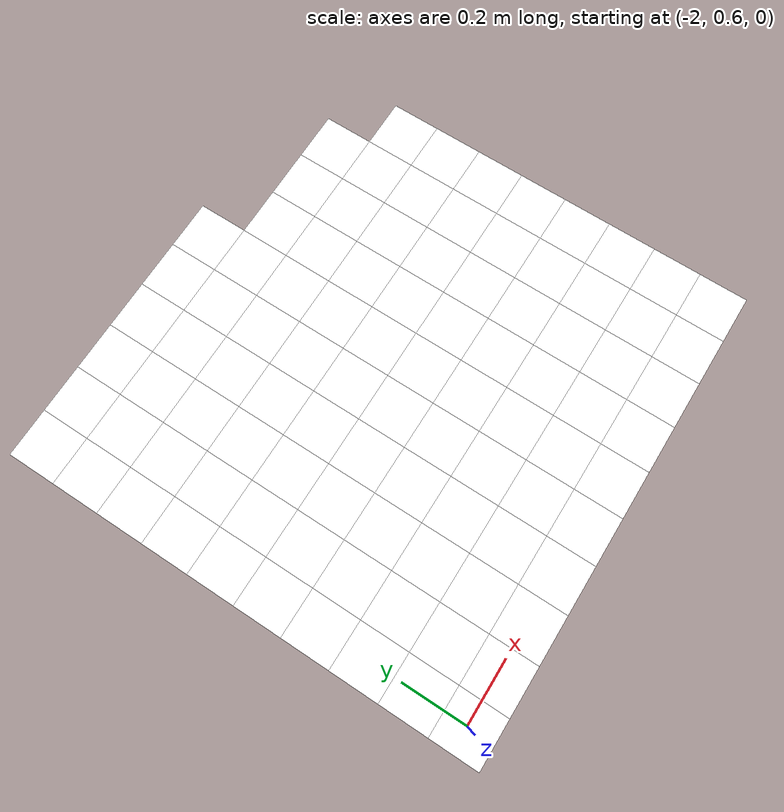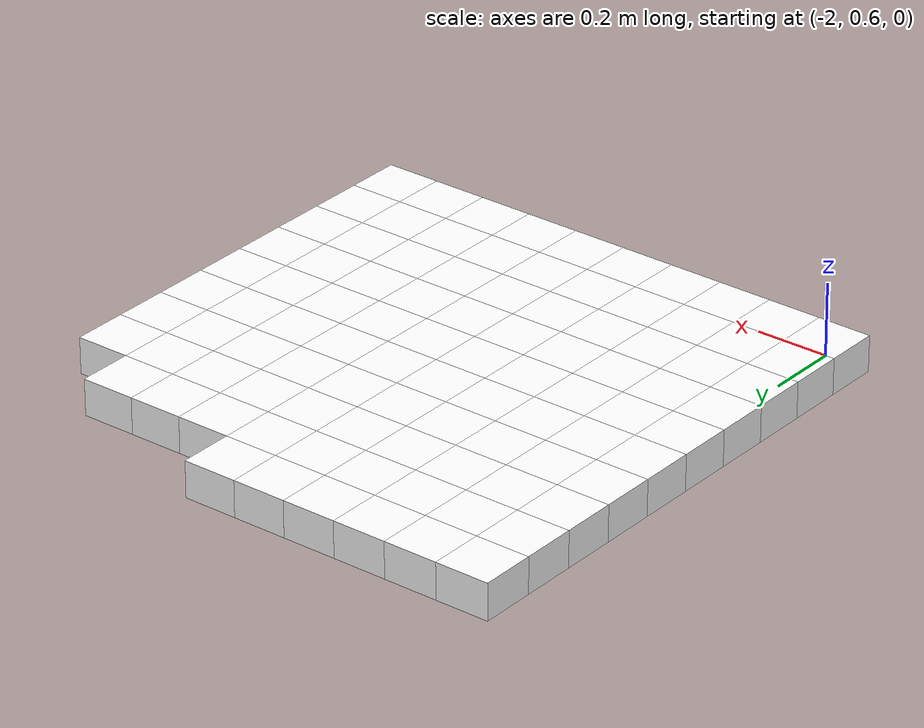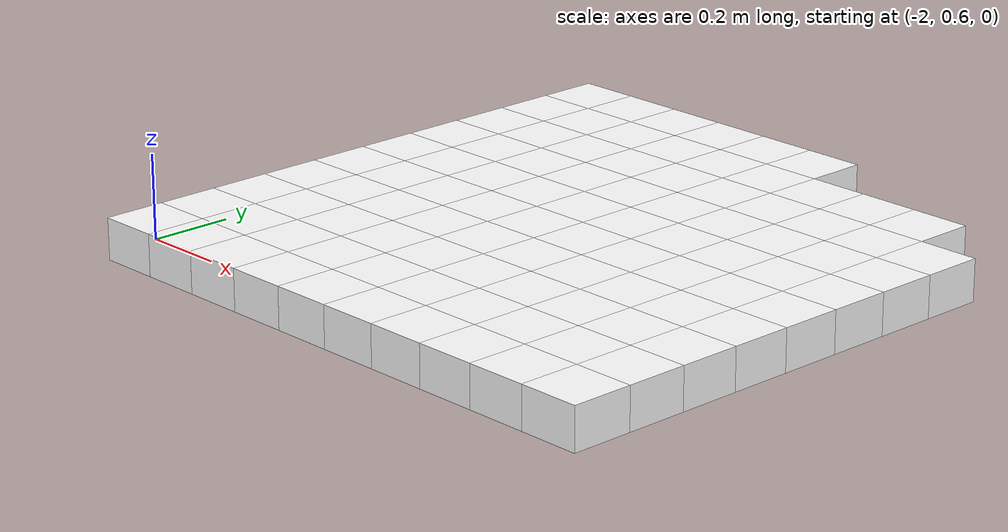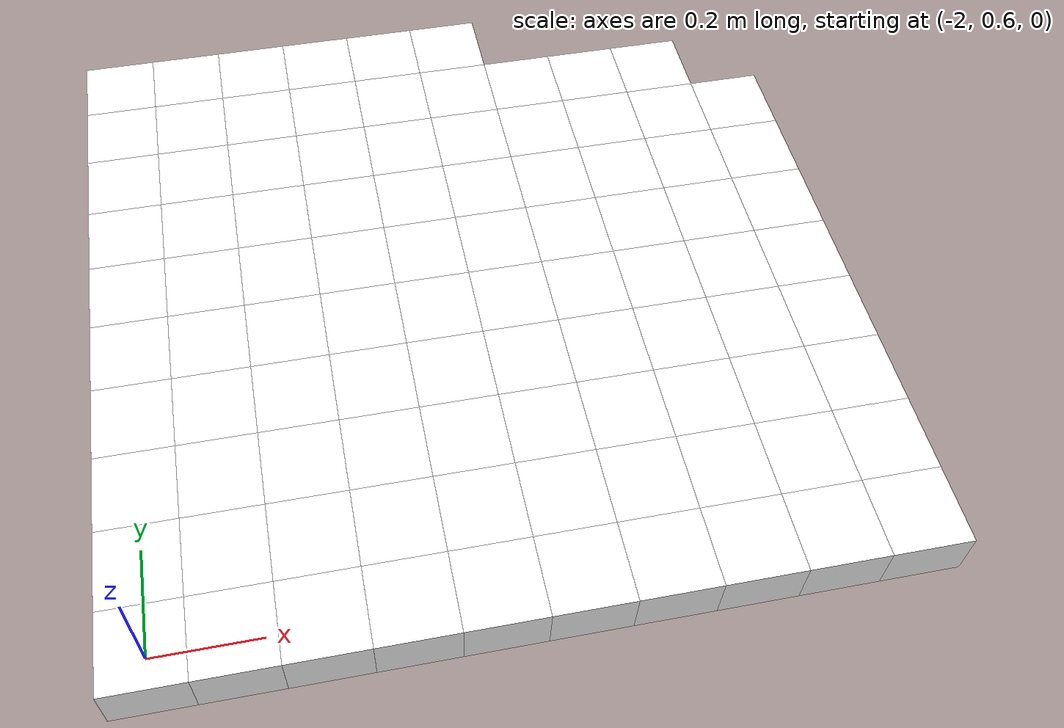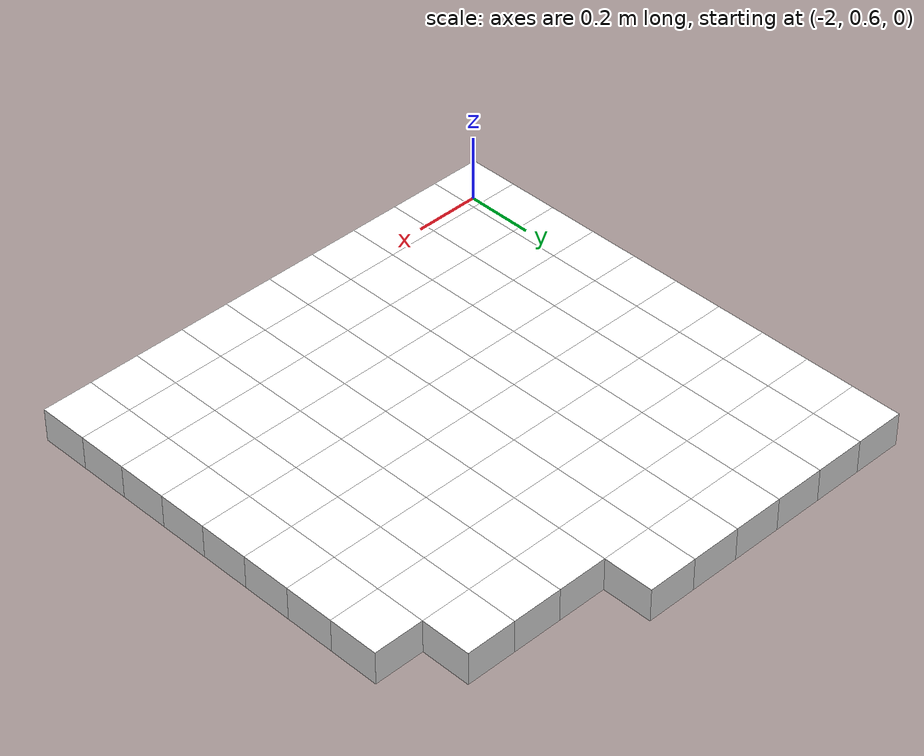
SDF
<sdf version="1.7">
 <world name="default">
  <include><uri>model://sun</uri></include>
  <model name="static_environment">
   <static>true</static>
   <link name="region_0">
    <pose>-2.0 0.6 0.0 0.0 0.0 0.0</pose>
    <collision name="region_0_collision">
     <geometry><box><size>0.15 0.15 0.1</size></box></geometry>
     <surface><friction><ode><mu>1.0</mu><mu2>1.0</mu2></ode></friction></surface>
    </collision>
    <visual name="region_0_visual">
     <geometry><box><size>0.15 0.15 0.1</size></box></geometry>
     <material><ambient>1.0 1.0 1.0 1.0</ambient><diffuse>1.0 1.0 1.0 1.0</diffuse></material>
    </visual>
   </link>
   <link name="region_1">
    <pose>-1.85 0.6 0.0 0.0 0.0 0.0</pose>
    <collision name="region_1_collision">
     <geometry><box><size>0.15 0.15 0.1</size></box></geometry>
     <surface><friction><ode><mu>1.0</mu><mu2>1.0</mu2></ode></friction></surface>
    </collision>
    <visual name="region_1_visual">
     <geometry><box><size>0.15 0.15 0.1</size></box></geometry>
     <material><ambient>1.0 1.0 1.0 1.0</ambient><diffuse>1.0 1.0 1.0 1.0</diffuse></material>
    </visual>
   </link>
   <link name="region_2">
    <pose>-1.7 0.6 0.0 0.0 0.0 0.0</pose>
    <collision name="region_2_collision">
     <geometry><box><size>0.15 0.15 0.1</size></box></geometry>
     <surface><friction><ode><mu>1.0</mu><mu2>1.0</mu2></ode></friction></surface>
    </collision>
    <visual name="region_2_visual">
     <geometry><box><size>0.15 0.15 0.1</size></box></geometry>
     <material><ambient>1.0 1.0 1.0 1.0</ambient><diffuse>1.0 1.0 1.0 1.0</diffuse></material>
    </visual>
   </link>
   <link name="region_3">
    <pose>-1.55 0.6 0.0 0.0 0.0 0.0</pose>
    <collision name="region_3_collision">
     <geometry><box><size>0.15 0.15 0.1</size></box></geometry>
     <surface><friction><ode><mu>1.0</mu><mu2>1.0</mu2></ode></friction></surface>
    </collision>
    <visual name="region_3_visual">
     <geometry><box><size>0.15 0.15 0.1</size></box></geometry>
     <material><ambient>1.0 1.0 1.0 1.0</ambient><diffuse>1.0 1.0 1.0 1.0</diffuse></material>
    </visual>
   </link>
   <link name="region_4">
    <pose>-1.4 0.6 0.0 0.0 0.0 0.0</pose>
    <collision name="region_4_collision">
     <geometry><box><size>0.15 0.15 0.1</size></box></geometry>
     <surface><friction><ode><mu>1.0</mu><mu2>1.0</mu2></ode></friction></surface>
    </collision>
    <visual name="region_4_visual">
     <geometry><box><size>0.15 0.15 0.1</size></box></geometry>
     <material><ambient>1.0 1.0 1.0 1.0</ambient><diffuse>1.0 1.0 1.0 1.0</diffuse></material>
    </visual>
   </link>
   <link name="region_5">
    <pose>-1.25 0.6 0.0 0.0 0.0 0.0</pose>
    <collision name="region_5_collision">
     <geometry><box><size>0.15 0.15 0.1</size></box></geometry>
     <surface><friction><ode><mu>1.0</mu><mu2>1.0</mu2></ode></friction></surface>
    </collision>
    <visual name="region_5_visual">
     <geometry><box><size>0.15 0.15 0.1</size></box></geometry>
     <material><ambient>1.0 1.0 1.0 1.0</ambient><diffuse>1.0 1.0 1.0 1.0</diffuse></material>
    </visual>
   </link>
   <link name="region_6">
    <pose>-1.1 0.6 0.0 0.0 0.0 0.0</pose>
    <collision name="region_6_collision">
     <geometry><box><size>0.15 0.15 0.1</size></box></geometry>
     <surface><friction><ode><mu>1.0</mu><mu2>1.0</mu2></ode></friction></surface>
    </collision>
    <visual name="region_6_visual">
     <geometry><box><size>0.15 0.15 0.1</size></box></geometry>
     <material><ambient>1.0 1.0 1.0 1.0</ambient><diffuse>1.0 1.0 1.0 1.0</diffuse></material>
    </visual>
   </link>
   <link name="region_7">
    <pose>-0.95 0.6 0.0 0.0 0.0 0.0</pose>
    <collision name="region_7_collision">
     <geometry><box><size>0.15 0.15 0.1</size></box></geometry>
     <surface><friction><ode><mu>1.0</mu><mu2>1.0</mu2></ode></friction></surface>
    </collision>
    <visual name="region_7_visual">
     <geometry><box><size>0.15 0.15 0.1</size></box></geometry>
     <material><ambient>1.0 1.0 1.0 1.0</ambient><diffuse>1.0 1.0 1.0 1.0</diffuse></material>
    </visual>
   </link>
   <link name="region_8">
    <pose>-0.8 0.6 0.0 0.0 0.0 0.0</pose>
    <collision name="region_8_collision">
     <geometry><box><size>0.15 0.15 0.1</size></box></geometry>
     <surface><friction><ode><mu>1.0</mu><mu2>1.0</mu2></ode></friction></surface>
    </collision>
    <visual name="region_8_visual">
     <geometry><box><size>0.15 0.15 0.1</size></box></geometry>
     <material><ambient>1.0 1.0 1.0 1.0</ambient><diffuse>1.0 1.0 1.0 1.0</diffuse></material>
    </visual>
   </link>
   <link name="region_9">
    <pose>-0.6500000000000001 0.6 0.0 0.0 0.0 0.0</pose>
    <collision name="region_9_collision">
     <geometry><box><size>0.15 0.15 0.1</size></box></geometry>
     <surface><friction><ode><mu>1.0</mu><mu2>1.0</mu2></ode></friction></surface>
    </collision>
    <visual name="region_9_visual">
     <geometry><box><size>0.15 0.15 0.1</size></box></geometry>
     <material><ambient>1.0 1.0 1.0 1.0</ambient><diffuse>1.0 1.0 1.0 1.0</diffuse></material>
    </visual>
   </link>
   <link name="region_20">
    <pose>-2.0 0.75 0.0 0.0 0.0 0.0</pose>
    <collision name="region_20_collision">
     <geometry><box><size>0.15 0.15 0.1</size></box></geometry>
     <surface><friction><ode><mu>1.0</mu><mu2>1.0</mu2></ode></friction></surface>
    </collision>
    <visual name="region_20_visual">
     <geometry><box><size>0.15 0.15 0.1</size></box></geometry>
     <material><ambient>1.0 1.0 1.0 1.0</ambient><diffuse>1.0 1.0 1.0 1.0</diffuse></material>
    </visual>
   </link>
   <link name="region_21">
    <pose>-1.85 0.75 0.0 0.0 0.0 0.0</pose>
    <collision name="region_21_collision">
     <geometry><box><size>0.15 0.15 0.1</size></box></geometry>
     <surface><friction><ode><mu>1.0</mu><mu2>1.0</mu2></ode></friction></surface>
    </collision>
    <visual name="region_21_visual">
     <geometry><box><size>0.15 0.15 0.1</size></box></geometry>
     <material><ambient>1.0 1.0 1.0 1.0</ambient><diffuse>1.0 1.0 1.0 1.0</diffuse></material>
    </visual>
   </link>
   <link name="region_22">
    <pose>-1.7 0.75 0.0 0.0 0.0 0.0</pose>
    <collision name="region_22_collision">
     <geometry><box><size>0.15 0.15 0.1</size></box></geometry>
     <surface><friction><ode><mu>1.0</mu><mu2>1.0</mu2></ode></friction></surface>
    </collision>
    <visual name="region_22_visual">
     <geometry><box><size>0.15 0.15 0.1</size></box></geometry>
     <material><ambient>1.0 1.0 1.0 1.0</ambient><diffuse>1.0 1.0 1.0 1.0</diffuse></material>
    </visual>
   </link>
   <link name="region_23">
    <pose>-1.55 0.75 0.0 0.0 0.0 0.0</pose>
    <collision name="region_23_collision">
     <geometry><box><size>0.15 0.15 0.1</size></box></geometry>
     <surface><friction><ode><mu>1.0</mu><mu2>1.0</mu2></ode></friction></surface>
    </collision>
    <visual name="region_23_visual">
     <geometry><box><size>0.15 0.15 0.1</size></box></geometry>
     <material><ambient>1.0 1.0 1.0 1.0</ambient><diffuse>1.0 1.0 1.0 1.0</diffuse></material>
    </visual>
   </link>
   <link name="region_24">
    <pose>-1.4 0.75 0.0 0.0 0.0 0.0</pose>
    <collision name="region_24_collision">
     <geometry><box><size>0.15 0.15 0.1</size></box></geometry>
     <surface><friction><ode><mu>1.0</mu><mu2>1.0</mu2></ode></friction></surface>
    </collision>
    <visual name="region_24_visual">
     <geometry><box><size>0.15 0.15 0.1</size></box></geometry>
     <material><ambient>1.0 1.0 1.0 1.0</ambient><diffuse>1.0 1.0 1.0 1.0</diffuse></material>
    </visual>
   </link>
   <link name="region_25">
    <pose>-1.25 0.75 0.0 0.0 0.0 0.0</pose>
    <collision name="region_25_collision">
     <geometry><box><size>0.15 0.15 0.1</size></box></geometry>
     <surface><friction><ode><mu>1.0</mu><mu2>1.0</mu2></ode></friction></surface>
    </collision>
    <visual name="region_25_visual">
     <geometry><box><size>0.15 0.15 0.1</size></box></geometry>
     <material><ambient>1.0 1.0 1.0 1.0</ambient><diffuse>1.0 1.0 1.0 1.0</diffuse></material>
    </visual>
   </link>
   <link name="region_26">
    <pose>-1.1 0.75 0.0 0.0 0.0 0.0</pose>
    <collision name="region_26_collision">
     <geometry><box><size>0.15 0.15 0.1</size></box></geometry>
     <surface><friction><ode><mu>1.0</mu><mu2>1.0</mu2></ode></friction></surface>
    </collision>
    <visual name="region_26_visual">
     <geometry><box><size>0.15 0.15 0.1</size></box></geometry>
     <material><ambient>1.0 1.0 1.0 1.0</ambient><diffuse>1.0 1.0 1.0 1.0</diffuse></material>
    </visual>
   </link>
   <link name="region_27">
    <pose>-0.95 0.75 0.0 0.0 0.0 0.0</pose>
    <collision name="region_27_collision">
     <geometry><box><size>0.15 0.15 0.1</size></box></geometry>
     <surface><friction><ode><mu>1.0</mu><mu2>1.0</mu2></ode></friction></surface>
    </collision>
    <visual name="region_27_visual">
     <geometry><box><size>0.15 0.15 0.1</size></box></geometry>
     <material><ambient>1.0 1.0 1.0 1.0</ambient><diffuse>1.0 1.0 1.0 1.0</diffuse></material>
    </visual>
   </link>
   <link name="region_28">
    <pose>-0.8 0.75 0.0 0.0 0.0 0.0</pose>
    <collision name="region_28_collision">
     <geometry><box><size>0.15 0.15 0.1</size></box></geometry>
     <surface><friction><ode><mu>1.0</mu><mu2>1.0</mu2></ode></friction></surface>
    </collision>
    <visual name="region_28_visual">
     <geometry><box><size>0.15 0.15 0.1</size></box></geometry>
     <material><ambient>1.0 1.0 1.0 1.0</ambient><diffuse>1.0 1.0 1.0 1.0</diffuse></material>
    </visual>
   </link>
   <link name="region_29">
    <pose>-0.6500000000000001 0.75 0.0 0.0 0.0 0.0</pose>
    <collision name="region_29_collision">
     <geometry><box><size>0.15 0.15 0.1</size></box></geometry>
     <surface><friction><ode><mu>1.0</mu><mu2>1.0</mu2></ode></friction></surface>
    </collision>
    <visual name="region_29_visual">
     <geometry><box><size>0.15 0.15 0.1</size></box></geometry>
     <material><ambient>1.0 1.0 1.0 1.0</ambient><diffuse>1.0 1.0 1.0 1.0</diffuse></material>
    </visual>
   </link>
   <link name="region_40">
    <pose>-2.0 0.8999999999999999 0.0 0.0 0.0 0.0</pose>
    <collision name="region_40_collision">
     <geometry><box><size>0.15 0.15 0.1</size></box></geometry>
     <surface><friction><ode><mu>1.0</mu><mu2>1.0</mu2></ode></friction></surface>
    </collision>
    <visual name="region_40_visual">
     <geometry><box><size>0.15 0.15 0.1</size></box></geometry>
     <material><ambient>1.0 1.0 1.0 1.0</ambient><diffuse>1.0 1.0 1.0 1.0</diffuse></material>
    </visual>
   </link>
   <link name="region_41">
    <pose>-1.85 0.8999999999999999 0.0 0.0 0.0 0.0</pose>
    <collision name="region_41_collision">
     <geometry><box><size>0.15 0.15 0.1</size></box></geometry>
     <surface><friction><ode><mu>1.0</mu><mu2>1.0</mu2></ode></friction></surface>
    </collision>
    <visual name="region_41_visual">
     <geometry><box><size>0.15 0.15 0.1</size></box></geometry>
     <material><ambient>1.0 1.0 1.0 1.0</ambient><diffuse>1.0 1.0 1.0 1.0</diffuse></material>
    </visual>
   </link>
   <link name="region_42">
    <pose>-1.7 0.8999999999999999 0.0 0.0 0.0 0.0</pose>
    <collision name="region_42_collision">
     <geometry><box><size>0.15 0.15 0.1</size></box></geometry>
     <surface><friction><ode><mu>1.0</mu><mu2>1.0</mu2></ode></friction></surface>
    </collision>
    <visual name="region_42_visual">
     <geometry><box><size>0.15 0.15 0.1</size></box></geometry>
     <material><ambient>1.0 1.0 1.0 1.0</ambient><diffuse>1.0 1.0 1.0 1.0</diffuse></material>
    </visual>
   </link>
   <link name="region_43">
    <pose>-1.55 0.8999999999999999 0.0 0.0 0.0 0.0</pose>
    <collision name="region_43_collision">
     <geometry><box><size>0.15 0.15 0.1</size></box></geometry>
     <surface><friction><ode><mu>1.0</mu><mu2>1.0</mu2></ode></friction></surface>
    </collision>
    <visual name="region_43_visual">
     <geometry><box><size>0.15 0.15 0.1</size></box></geometry>
     <material><ambient>1.0 1.0 1.0 1.0</ambient><diffuse>1.0 1.0 1.0 1.0</diffuse></material>
    </visual>
   </link>
   <link name="region_44">
    <pose>-1.4 0.8999999999999999 0.0 0.0 0.0 0.0</pose>
    <collision name="region_44_collision">
     <geometry><box><size>0.15 0.15 0.1</size></box></geometry>
     <surface><friction><ode><mu>1.0</mu><mu2>1.0</mu2></ode></friction></surface>
    </collision>
    <visual name="region_44_visual">
     <geometry><box><size>0.15 0.15 0.1</size></box></geometry>
     <material><ambient>1.0 1.0 1.0 1.0</ambient><diffuse>1.0 1.0 1.0 1.0</diffuse></material>
    </visual>
   </link>
   <link name="region_45">
    <pose>-1.25 0.8999999999999999 0.0 0.0 0.0 0.0</pose>
    <collision name="region_45_collision">
     <geometry><box><size>0.15 0.15 0.1</size></box></geometry>
     <surface><friction><ode><mu>1.0</mu><mu2>1.0</mu2></ode></friction></surface>
    </collision>
    <visual name="region_45_visual">
     <geometry><box><size>0.15 0.15 0.1</size></box></geometry>
     <material><ambient>1.0 1.0 1.0 1.0</ambient><diffuse>1.0 1.0 1.0 1.0</diffuse></material>
    </visual>
   </link>
   <link name="region_46">
    <pose>-1.1 0.8999999999999999 0.0 0.0 0.0 0.0</pose>
    <collision name="region_46_collision">
     <geometry><box><size>0.15 0.15 0.1</size></box></geometry>
     <surface><friction><ode><mu>1.0</mu><mu2>1.0</mu2></ode></friction></surface>
    </collision>
    <visual name="region_46_visual">
     <geometry><box><size>0.15 0.15 0.1</size></box></geometry>
     <material><ambient>1.0 1.0 1.0 1.0</ambient><diffuse>1.0 1.0 1.0 1.0</diffuse></material>
    </visual>
   </link>
   <link name="region_47">
    <pose>-0.95 0.8999999999999999 0.0 0.0 0.0 0.0</pose>
    <collision name="region_47_collision">
     <geometry><box><size>0.15 0.15 0.1</size></box></geometry>
     <surface><friction><ode><mu>1.0</mu><mu2>1.0</mu2></ode></friction></surface>
    </collision>
    <visual name="region_47_visual">
     <geometry><box><size>0.15 0.15 0.1</size></box></geometry>
     <material><ambient>1.0 1.0 1.0 1.0</ambient><diffuse>1.0 1.0 1.0 1.0</diffuse></material>
    </visual>
   </link>
   <link name="region_48">
    <pose>-0.8 0.8999999999999999 0.0 0.0 0.0 0.0</pose>
    <collision name="region_48_collision">
     <geometry><box><size>0.15 0.15 0.1</size></box></geometry>
     <surface><friction><ode><mu>1.0</mu><mu2>1.0</mu2></ode></friction></surface>
    </collision>
    <visual name="region_48_visual">
     <geometry><box><size>0.15 0.15 0.1</size></box></geometry>
     <material><ambient>1.0 1.0 1.0 1.0</ambient><diffuse>1.0 1.0 1.0 1.0</diffuse></material>
    </visual>
   </link>
   <link name="region_49">
    <pose>-0.6500000000000001 0.8999999999999999 0.0 0.0 0.0 0.0</pose>
    <collision name="region_49_collision">
     <geometry><box><size>0.15 0.15 0.1</size></box></geometry>
     <surface><friction><ode><mu>1.0</mu><mu2>1.0</mu2></ode></friction></surface>
    </collision>
    <visual name="region_49_visual">
     <geometry><box><size>0.15 0.15 0.1</size></box></geometry>
     <material><ambient>1.0 1.0 1.0 1.0</ambient><diffuse>1.0 1.0 1.0 1.0</diffuse></material>
    </visual>
   </link>
   <link name="region_60">
    <pose>-2.0 1.0499999999999998 0.0 0.0 0.0 0.0</pose>
    <collision name="region_60_collision">
     <geometry><box><size>0.15 0.15 0.1</size></box></geometry>
     <surface><friction><ode><mu>1.0</mu><mu2>1.0</mu2></ode></friction></surface>
    </collision>
    <visual name="region_60_visual">
     <geometry><box><size>0.15 0.15 0.1</size></box></geometry>
     <material><ambient>1.0 1.0 1.0 1.0</ambient><diffuse>1.0 1.0 1.0 1.0</diffuse></material>
    </visual>
   </link>
   <link name="region_61">
    <pose>-1.85 1.0499999999999998 0.0 0.0 0.0 0.0</pose>
    <collision name="region_61_collision">
     <geometry><box><size>0.15 0.15 0.1</size></box></geometry>
     <surface><friction><ode><mu>1.0</mu><mu2>1.0</mu2></ode></friction></surface>
    </collision>
    <visual name="region_61_visual">
     <geometry><box><size>0.15 0.15 0.1</size></box></geometry>
     <material><ambient>1.0 1.0 1.0 1.0</ambient><diffuse>1.0 1.0 1.0 1.0</diffuse></material>
    </visual>
   </link>
   <link name="region_62">
    <pose>-1.7 1.0499999999999998 0.0 0.0 0.0 0.0</pose>
    <collision name="region_62_collision">
     <geometry><box><size>0.15 0.15 0.1</size></box></geometry>
     <surface><friction><ode><mu>1.0</mu><mu2>1.0</mu2></ode></friction></surface>
    </collision>
    <visual name="region_62_visual">
     <geometry><box><size>0.15 0.15 0.1</size></box></geometry>
     <material><ambient>1.0 1.0 1.0 1.0</ambient><diffuse>1.0 1.0 1.0 1.0</diffuse></material>
    </visual>
   </link>
   <link name="region_63">
    <pose>-1.55 1.0499999999999998 0.0 0.0 0.0 0.0</pose>
    <collision name="region_63_collision">
     <geometry><box><size>0.15 0.15 0.1</size></box></geometry>
     <surface><friction><ode><mu>1.0</mu><mu2>1.0</mu2></ode></friction></surface>
    </collision>
    <visual name="region_63_visual">
     <geometry><box><size>0.15 0.15 0.1</size></box></geometry>
     <material><ambient>1.0 1.0 1.0 1.0</ambient><diffuse>1.0 1.0 1.0 1.0</diffuse></material>
    </visual>
   </link>
   <link name="region_64">
    <pose>-1.4 1.0499999999999998 0.0 0.0 0.0 0.0</pose>
    <collision name="region_64_collision">
     <geometry><box><size>0.15 0.15 0.1</size></box></geometry>
     <surface><friction><ode><mu>1.0</mu><mu2>1.0</mu2></ode></friction></surface>
    </collision>
    <visual name="region_64_visual">
     <geometry><box><size>0.15 0.15 0.1</size></box></geometry>
     <material><ambient>1.0 1.0 1.0 1.0</ambient><diffuse>1.0 1.0 1.0 1.0</diffuse></material>
    </visual>
   </link>
   <link name="region_65">
    <pose>-1.25 1.0499999999999998 0.0 0.0 0.0 0.0</pose>
    <collision name="region_65_collision">
     <geometry><box><size>0.15 0.15 0.1</size></box></geometry>
     <surface><friction><ode><mu>1.0</mu><mu2>1.0</mu2></ode></friction></surface>
    </collision>
    <visual name="region_65_visual">
     <geometry><box><size>0.15 0.15 0.1</size></box></geometry>
     <material><ambient>1.0 1.0 1.0 1.0</ambient><diffuse>1.0 1.0 1.0 1.0</diffuse></material>
    </visual>
   </link>
   <link name="region_66">
    <pose>-1.1 1.0499999999999998 0.0 0.0 0.0 0.0</pose>
    <collision name="region_66_collision">
     <geometry><box><size>0.15 0.15 0.1</size></box></geometry>
     <surface><friction><ode><mu>1.0</mu><mu2>1.0</mu2></ode></friction></surface>
    </collision>
    <visual name="region_66_visual">
     <geometry><box><size>0.15 0.15 0.1</size></box></geometry>
     <material><ambient>1.0 1.0 1.0 1.0</ambient><diffuse>1.0 1.0 1.0 1.0</diffuse></material>
    </visual>
   </link>
   <link name="region_67">
    <pose>-0.95 1.0499999999999998 0.0 0.0 0.0 0.0</pose>
    <collision name="region_67_collision">
     <geometry><box><size>0.15 0.15 0.1</size></box></geometry>
     <surface><friction><ode><mu>1.0</mu><mu2>1.0</mu2></ode></friction></surface>
    </collision>
    <visual name="region_67_visual">
     <geometry><box><size>0.15 0.15 0.1</size></box></geometry>
     <material><ambient>1.0 1.0 1.0 1.0</ambient><diffuse>1.0 1.0 1.0 1.0</diffuse></material>
    </visual>
   </link>
   <link name="region_68">
    <pose>-0.8 1.0499999999999998 0.0 0.0 0.0 0.0</pose>
    <collision name="region_68_collision">
     <geometry><box><size>0.15 0.15 0.1</size></box></geometry>
     <surface><friction><ode><mu>1.0</mu><mu2>1.0</mu2></ode></friction></surface>
    </collision>
    <visual name="region_68_visual">
     <geometry><box><size>0.15 0.15 0.1</size></box></geometry>
     <material><ambient>1.0 1.0 1.0 1.0</ambient><diffuse>1.0 1.0 1.0 1.0</diffuse></material>
    </visual>
   </link>
   <link name="region_69">
    <pose>-0.6500000000000001 1.0499999999999998 0.0 0.0 0.0 0.0</pose>
    <collision name="region_69_collision">
     <geometry><box><size>0.15 0.15 0.1</size></box></geometry>
     <surface><friction><ode><mu>1.0</mu><mu2>1.0</mu2></ode></friction></surface>
    </collision>
    <visual name="region_69_visual">
     <geometry><box><size>0.15 0.15 0.1</size></box></geometry>
     <material><ambient>1.0 1.0 1.0 1.0</ambient><diffuse>1.0 1.0 1.0 1.0</diffuse></material>
    </visual>
   </link>
   <link name="region_80">
    <pose>-2.0 1.2 0.0 0.0 0.0 0.0</pose>
    <collision name="region_80_collision">
     <geometry><box><size>0.15 0.15 0.1</size></box></geometry>
     <surface><friction><ode><mu>1.0</mu><mu2>1.0</mu2></ode></friction></surface>
    </collision>
    <visual name="region_80_visual">
     <geometry><box><size>0.15 0.15 0.1</size></box></geometry>
     <material><ambient>1.0 1.0 1.0 1.0</ambient><diffuse>1.0 1.0 1.0 1.0</diffuse></material>
    </visual>
   </link>
   <link name="region_81">
    <pose>-1.85 1.2 0.0 0.0 0.0 0.0</pose>
    <collision name="region_81_collision">
     <geometry><box><size>0.15 0.15 0.1</size></box></geometry>
     <surface><friction><ode><mu>1.0</mu><mu2>1.0</mu2></ode></friction></surface>
    </collision>
    <visual name="region_81_visual">
     <geometry><box><size>0.15 0.15 0.1</size></box></geometry>
     <material><ambient>1.0 1.0 1.0 1.0</ambient><diffuse>1.0 1.0 1.0 1.0</diffuse></material>
    </visual>
   </link>
   <link name="region_82">
    <pose>-1.7 1.2 0.0 0.0 0.0 0.0</pose>
    <collision name="region_82_collision">
     <geometry><box><size>0.15 0.15 0.1</size></box></geometry>
     <surface><friction><ode><mu>1.0</mu><mu2>1.0</mu2></ode></friction></surface>
    </collision>
    <visual name="region_82_visual">
     <geometry><box><size>0.15 0.15 0.1</size></box></geometry>
     <material><ambient>1.0 1.0 1.0 1.0</ambient><diffuse>1.0 1.0 1.0 1.0</diffuse></material>
    </visual>
   </link>
   <link name="region_83">
    <pose>-1.55 1.2 0.0 0.0 0.0 0.0</pose>
    <collision name="region_83_collision">
     <geometry><box><size>0.15 0.15 0.1</size></box></geometry>
     <surface><friction><ode><mu>1.0</mu><mu2>1.0</mu2></ode></friction></surface>
    </collision>
    <visual name="region_83_visual">
     <geometry><box><size>0.15 0.15 0.1</size></box></geometry>
     <material><ambient>1.0 1.0 1.0 1.0</ambient><diffuse>1.0 1.0 1.0 1.0</diffuse></material>
    </visual>
   </link>
   <link name="region_84">
    <pose>-1.4 1.2 0.0 0.0 0.0 0.0</pose>
    <collision name="region_84_collision">
     <geometry><box><size>0.15 0.15 0.1</size></box></geometry>
     <surface><friction><ode><mu>1.0</mu><mu2>1.0</mu2></ode></friction></surface>
    </collision>
    <visual name="region_84_visual">
     <geometry><box><size>0.15 0.15 0.1</size></box></geometry>
     <material><ambient>1.0 1.0 1.0 1.0</ambient><diffuse>1.0 1.0 1.0 1.0</diffuse></material>
    </visual>
   </link>
   <link name="region_85">
    <pose>-1.25 1.2 0.0 0.0 0.0 0.0</pose>
    <collision name="region_85_collision">
     <geometry><box><size>0.15 0.15 0.1</size></box></geometry>
     <surface><friction><ode><mu>1.0</mu><mu2>1.0</mu2></ode></friction></surface>
    </collision>
    <visual name="region_85_visual">
     <geometry><box><size>0.15 0.15 0.1</size></box></geometry>
     <material><ambient>1.0 1.0 1.0 1.0</ambient><diffuse>1.0 1.0 1.0 1.0</diffuse></material>
    </visual>
   </link>
   <link name="region_86">
    <pose>-1.1 1.2 0.0 0.0 0.0 0.0</pose>
    <collision name="region_86_collision">
     <geometry><box><size>0.15 0.15 0.1</size></box></geometry>
     <surface><friction><ode><mu>1.0</mu><mu2>1.0</mu2></ode></friction></surface>
    </collision>
    <visual name="region_86_visual">
     <geometry><box><size>0.15 0.15 0.1</size></box></geometry>
     <material><ambient>1.0 1.0 1.0 1.0</ambient><diffuse>1.0 1.0 1.0 1.0</diffuse></material>
    </visual>
   </link>
   <link name="region_87">
    <pose>-0.95 1.2 0.0 0.0 0.0 0.0</pose>
    <collision name="region_87_collision">
     <geometry><box><size>0.15 0.15 0.1</size></box></geometry>
     <surface><friction><ode><mu>1.0</mu><mu2>1.0</mu2></ode></friction></surface>
    </collision>
    <visual name="region_87_visual">
     <geometry><box><size>0.15 0.15 0.1</size></box></geometry>
     <material><ambient>1.0 1.0 1.0 1.0</ambient><diffuse>1.0 1.0 1.0 1.0</diffuse></material>
    </visual>
   </link>
   <link name="region_88">
    <pose>-0.8 1.2 0.0 0.0 0.0 0.0</pose>
    <collision name="region_88_collision">
     <geometry><box><size>0.15 0.15 0.1</size></box></geometry>
     <surface><friction><ode><mu>1.0</mu><mu2>1.0</mu2></ode></friction></surface>
    </collision>
    <visual name="region_88_visual">
     <geometry><box><size>0.15 0.15 0.1</size></box></geometry>
     <material><ambient>1.0 1.0 1.0 1.0</ambient><diffuse>1.0 1.0 1.0 1.0</diffuse></material>
    </visual>
   </link>
   <link name="region_89">
    <pose>-0.6500000000000001 1.2 0.0 0.0 0.0 0.0</pose>
    <collision name="region_89_collision">
     <geometry><box><size>0.15 0.15 0.1</size></box></geometry>
     <surface><friction><ode><mu>1.0</mu><mu2>1.0</mu2></ode></friction></surface>
    </collision>
    <visual name="region_89_visual">
     <geometry><box><size>0.15 0.15 0.1</size></box></geometry>
     <material><ambient>1.0 1.0 1.0 1.0</ambient><diffuse>1.0 1.0 1.0 1.0</diffuse></material>
    </visual>
   </link>
   <link name="region_100">
    <pose>-2.0 1.35 0.0 0.0 0.0 0.0</pose>
    <collision name="region_100_collision">
     <geometry><box><size>0.15 0.15 0.1</size></box></geometry>
     <surface><friction><ode><mu>1.0</mu><mu2>1.0</mu2></ode></friction></surface>
    </collision>
    <visual name="region_100_visual">
     <geometry><box><size>0.15 0.15 0.1</size></box></geometry>
     <material><ambient>1.0 1.0 1.0 1.0</ambient><diffuse>1.0 1.0 1.0 1.0</diffuse></material>
    </visual>
   </link>
   <link name="region_101">
    <pose>-1.85 1.35 0.0 0.0 0.0 0.0</pose>
    <collision name="region_101_collision">
     <geometry><box><size>0.15 0.15 0.1</size></box></geometry>
     <surface><friction><ode><mu>1.0</mu><mu2>1.0</mu2></ode></friction></surface>
    </collision>
    <visual name="region_101_visual">
     <geometry><box><size>0.15 0.15 0.1</size></box></geometry>
     <material><ambient>1.0 1.0 1.0 1.0</ambient><diffuse>1.0 1.0 1.0 1.0</diffuse></material>
    </visual>
   </link>
   <link name="region_102">
    <pose>-1.7 1.35 0.0 0.0 0.0 0.0</pose>
    <collision name="region_102_collision">
     <geometry><box><size>0.15 0.15 0.1</size></box></geometry>
     <surface><friction><ode><mu>1.0</mu><mu2>1.0</mu2></ode></friction></surface>
    </collision>
    <visual name="region_102_visual">
     <geometry><box><size>0.15 0.15 0.1</size></box></geometry>
     <material><ambient>1.0 1.0 1.0 1.0</ambient><diffuse>1.0 1.0 1.0 1.0</diffuse></material>
    </visual>
   </link>
   <link name="region_103">
    <pose>-1.55 1.35 0.0 0.0 0.0 0.0</pose>
    <collision name="region_103_collision">
     <geometry><box><size>0.15 0.15 0.1</size></box></geometry>
     <surface><friction><ode><mu>1.0</mu><mu2>1.0</mu2></ode></friction></surface>
    </collision>
    <visual name="region_103_visual">
     <geometry><box><size>0.15 0.15 0.1</size></box></geometry>
     <material><ambient>1.0 1.0 1.0 1.0</ambient><diffuse>1.0 1.0 1.0 1.0</diffuse></material>
    </visual>
   </link>
   <link name="region_104">
    <pose>-1.4 1.35 0.0 0.0 0.0 0.0</pose>
    <collision name="region_104_collision">
     <geometry><box><size>0.15 0.15 0.1</size></box></geometry>
     <surface><friction><ode><mu>1.0</mu><mu2>1.0</mu2></ode></friction></surface>
    </collision>
    <visual name="region_104_visual">
     <geometry><box><size>0.15 0.15 0.1</size></box></geometry>
     <material><ambient>1.0 1.0 1.0 1.0</ambient><diffuse>1.0 1.0 1.0 1.0</diffuse></material>
    </visual>
   </link>
   <link name="region_105">
    <pose>-1.25 1.35 0.0 0.0 0.0 0.0</pose>
    <collision name="region_105_collision">
     <geometry><box><size>0.15 0.15 0.1</size></box></geometry>
     <surface><friction><ode><mu>1.0</mu><mu2>1.0</mu2></ode></friction></surface>
    </collision>
    <visual name="region_105_visual">
     <geometry><box><size>0.15 0.15 0.1</size></box></geometry>
     <material><ambient>1.0 1.0 1.0 1.0</ambient><diffuse>1.0 1.0 1.0 1.0</diffuse></material>
    </visual>
   </link>
   <link name="region_106">
    <pose>-1.1 1.35 0.0 0.0 0.0 0.0</pose>
    <collision name="region_106_collision">
     <geometry><box><size>0.15 0.15 0.1</size></box></geometry>
     <surface><friction><ode><mu>1.0</mu><mu2>1.0</mu2></ode></friction></surface>
    </collision>
    <visual name="region_106_visual">
     <geometry><box><size>0.15 0.15 0.1</size></box></geometry>
     <material><ambient>1.0 1.0 1.0 1.0</ambient><diffuse>1.0 1.0 1.0 1.0</diffuse></material>
    </visual>
   </link>
   <link name="region_107">
    <pose>-0.95 1.35 0.0 0.0 0.0 0.0</pose>
    <collision name="region_107_collision">
     <geometry><box><size>0.15 0.15 0.1</size></box></geometry>
     <surface><friction><ode><mu>1.0</mu><mu2>1.0</mu2></ode></friction></surface>
    </collision>
    <visual name="region_107_visual">
     <geometry><box><size>0.15 0.15 0.1</size></box></geometry>
     <material><ambient>1.0 1.0 1.0 1.0</ambient><diffuse>1.0 1.0 1.0 1.0</diffuse></material>
    </visual>
   </link>
   <link name="region_108">
    <pose>-0.8 1.35 0.0 0.0 0.0 0.0</pose>
    <collision name="region_108_collision">
     <geometry><box><size>0.15 0.15 0.1</size></box></geometry>
     <surface><friction><ode><mu>1.0</mu><mu2>1.0</mu2></ode></friction></surface>
    </collision>
    <visual name="region_108_visual">
     <geometry><box><size>0.15 0.15 0.1</size></box></geometry>
     <material><ambient>1.0 1.0 1.0 1.0</ambient><diffuse>1.0 1.0 1.0 1.0</diffuse></material>
    </visual>
   </link>
   <link name="region_109">
    <pose>-0.6500000000000001 1.35 0.0 0.0 0.0 0.0</pose>
    <collision name="region_109_collision">
     <geometry><box><size>0.15 0.15 0.1</size></box></geometry>
     <surface><friction><ode><mu>1.0</mu><mu2>1.0</mu2></ode></friction></surface>
    </collision>
    <visual name="region_109_visual">
     <geometry><box><size>0.15 0.15 0.1</size></box></geometry>
     <material><ambient>1.0 1.0 1.0 1.0</ambient><diffuse>1.0 1.0 1.0 1.0</diffuse></material>
    </visual>
   </link>
   <link name="region_120">
    <pose>-2.0 1.5 0.0 0.0 0.0 0.0</pose>
    <collision name="region_120_collision">
     <geometry><box><size>0.15 0.15 0.1</size></box></geometry>
     <surface><friction><ode><mu>1.0</mu><mu2>1.0</mu2></ode></friction></surface>
    </collision>
    <visual name="region_120_visual">
     <geometry><box><size>0.15 0.15 0.1</size></box></geometry>
     <material><ambient>1.0 1.0 1.0 1.0</ambient><diffuse>1.0 1.0 1.0 1.0</diffuse></material>
    </visual>
   </link>
   <link name="region_121">
    <pose>-1.85 1.5 0.0 0.0 0.0 0.0</pose>
    <collision name="region_121_collision">
     <geometry><box><size>0.15 0.15 0.1</size></box></geometry>
     <surface><friction><ode><mu>1.0</mu><mu2>1.0</mu2></ode></friction></surface>
    </collision>
    <visual name="region_121_visual">
     <geometry><box><size>0.15 0.15 0.1</size></box></geometry>
     <material><ambient>1.0 1.0 1.0 1.0</ambient><diffuse>1.0 1.0 1.0 1.0</diffuse></material>
    </visual>
   </link>
   <link name="region_122">
    <pose>-1.7 1.5 0.0 0.0 0.0 0.0</pose>
    <collision name="region_122_collision">
     <geometry><box><size>0.15 0.15 0.1</size></box></geometry>
     <surface><friction><ode><mu>1.0</mu><mu2>1.0</mu2></ode></friction></surface>
    </collision>
    <visual name="region_122_visual">
     <geometry><box><size>0.15 0.15 0.1</size></box></geometry>
     <material><ambient>1.0 1.0 1.0 1.0</ambient><diffuse>1.0 1.0 1.0 1.0</diffuse></material>
    </visual>
   </link>
   <link name="region_123">
    <pose>-1.55 1.5 0.0 0.0 0.0 0.0</pose>
    <collision name="region_123_collision">
     <geometry><box><size>0.15 0.15 0.1</size></box></geometry>
     <surface><friction><ode><mu>1.0</mu><mu2>1.0</mu2></ode></friction></surface>
    </collision>
    <visual name="region_123_visual">
     <geometry><box><size>0.15 0.15 0.1</size></box></geometry>
     <material><ambient>1.0 1.0 1.0 1.0</ambient><diffuse>1.0 1.0 1.0 1.0</diffuse></material>
    </visual>
   </link>
   <link name="region_124">
    <pose>-1.4 1.5 0.0 0.0 0.0 0.0</pose>
    <collision name="region_124_collision">
     <geometry><box><size>0.15 0.15 0.1</size></box></geometry>
     <surface><friction><ode><mu>1.0</mu><mu2>1.0</mu2></ode></friction></surface>
    </collision>
    <visual name="region_124_visual">
     <geometry><box><size>0.15 0.15 0.1</size></box></geometry>
     <material><ambient>1.0 1.0 1.0 1.0</ambient><diffuse>1.0 1.0 1.0 1.0</diffuse></material>
    </visual>
   </link>
   <link name="region_125">
    <pose>-1.25 1.5 0.0 0.0 0.0 0.0</pose>
    <collision name="region_125_collision">
     <geometry><box><size>0.15 0.15 0.1</size></box></geometry>
     <surface><friction><ode><mu>1.0</mu><mu2>1.0</mu2></ode></friction></surface>
    </collision>
    <visual name="region_125_visual">
     <geometry><box><size>0.15 0.15 0.1</size></box></geometry>
     <material><ambient>1.0 1.0 1.0 1.0</ambient><diffuse>1.0 1.0 1.0 1.0</diffuse></material>
    </visual>
   </link>
   <link name="region_126">
    <pose>-1.1 1.5 0.0 0.0 0.0 0.0</pose>
    <collision name="region_126_collision">
     <geometry><box><size>0.15 0.15 0.1</size></box></geometry>
     <surface><friction><ode><mu>1.0</mu><mu2>1.0</mu2></ode></friction></surface>
    </collision>
    <visual name="region_126_visual">
     <geometry><box><size>0.15 0.15 0.1</size></box></geometry>
     <material><ambient>1.0 1.0 1.0 1.0</ambient><diffuse>1.0 1.0 1.0 1.0</diffuse></material>
    </visual>
   </link>
   <link name="region_127">
    <pose>-0.95 1.5 0.0 0.0 0.0 0.0</pose>
    <collision name="region_127_collision">
     <geometry><box><size>0.15 0.15 0.1</size></box></geometry>
     <surface><friction><ode><mu>1.0</mu><mu2>1.0</mu2></ode></friction></surface>
    </collision>
    <visual name="region_127_visual">
     <geometry><box><size>0.15 0.15 0.1</size></box></geometry>
     <material><ambient>1.0 1.0 1.0 1.0</ambient><diffuse>1.0 1.0 1.0 1.0</diffuse></material>
    </visual>
   </link>
   <link name="region_128">
    <pose>-0.8 1.5 0.0 0.0 0.0 0.0</pose>
    <collision name="region_128_collision">
     <geometry><box><size>0.15 0.15 0.1</size></box></geometry>
     <surface><friction><ode><mu>1.0</mu><mu2>1.0</mu2></ode></friction></surface>
    </collision>
    <visual name="region_128_visual">
     <geometry><box><size>0.15 0.15 0.1</size></box></geometry>
     <material><ambient>1.0 1.0 1.0 1.0</ambient><diffuse>1.0 1.0 1.0 1.0</diffuse></material>
    </visual>
   </link>
   <link name="region_129">
    <pose>-0.6500000000000001 1.5 0.0 0.0 0.0 0.0</pose>
    <collision name="region_129_collision">
     <geometry><box><size>0.15 0.15 0.1</size></box></geometry>
     <surface><friction><ode><mu>1.0</mu><mu2>1.0</mu2></ode></friction></surface>
    </collision>
    <visual name="region_129_visual">
     <geometry><box><size>0.15 0.15 0.1</size></box></geometry>
     <material><ambient>1.0 1.0 1.0 1.0</ambient><diffuse>1.0 1.0 1.0 1.0</diffuse></material>
    </visual>
   </link>
   <link name="region_140">
    <pose>-2.0 1.65 0.0 0.0 0.0 0.0</pose>
    <collision name="region_140_collision">
     <geometry><box><size>0.15 0.15 0.1</size></box></geometry>
     <surface><friction><ode><mu>1.0</mu><mu2>1.0</mu2></ode></friction></surface>
    </collision>
    <visual name="region_140_visual">
     <geometry><box><size>0.15 0.15 0.1</size></box></geometry>
     <material><ambient>1.0 1.0 1.0 1.0</ambient><diffuse>1.0 1.0 1.0 1.0</diffuse></material>
    </visual>
   </link>
   <link name="region_141">
    <pose>-1.85 1.65 0.0 0.0 0.0 0.0</pose>
    <collision name="region_141_collision">
     <geometry><box><size>0.15 0.15 0.1</size></box></geometry>
     <surface><friction><ode><mu>1.0</mu><mu2>1.0</mu2></ode></friction></surface>
    </collision>
    <visual name="region_141_visual">
     <geometry><box><size>0.15 0.15 0.1</size></box></geometry>
     <material><ambient>1.0 1.0 1.0 1.0</ambient><diffuse>1.0 1.0 1.0 1.0</diffuse></material>
    </visual>
   </link>
   <link name="region_142">
    <pose>-1.7 1.65 0.0 0.0 0.0 0.0</pose>
    <collision name="region_142_collision">
     <geometry><box><size>0.15 0.15 0.1</size></box></geometry>
     <surface><friction><ode><mu>1.0</mu><mu2>1.0</mu2></ode></friction></surface>
    </collision>
    <visual name="region_142_visual">
     <geometry><box><size>0.15 0.15 0.1</size></box></geometry>
     <material><ambient>1.0 1.0 1.0 1.0</ambient><diffuse>1.0 1.0 1.0 1.0</diffuse></material>
    </visual>
   </link>
   <link name="region_143">
    <pose>-1.55 1.65 0.0 0.0 0.0 0.0</pose>
    <collision name="region_143_collision">
     <geometry><box><size>0.15 0.15 0.1</size></box></geometry>
     <surface><friction><ode><mu>1.0</mu><mu2>1.0</mu2></ode></friction></surface>
    </collision>
    <visual name="region_143_visual">
     <geometry><box><size>0.15 0.15 0.1</size></box></geometry>
     <material><ambient>1.0 1.0 1.0 1.0</ambient><diffuse>1.0 1.0 1.0 1.0</diffuse></material>
    </visual>
   </link>
   <link name="region_144">
    <pose>-1.4 1.65 0.0 0.0 0.0 0.0</pose>
    <collision name="region_144_collision">
     <geometry><box><size>0.15 0.15 0.1</size></box></geometry>
     <surface><friction><ode><mu>1.0</mu><mu2>1.0</mu2></ode></friction></surface>
    </collision>
    <visual name="region_144_visual">
     <geometry><box><size>0.15 0.15 0.1</size></box></geometry>
     <material><ambient>1.0 1.0 1.0 1.0</ambient><diffuse>1.0 1.0 1.0 1.0</diffuse></material>
    </visual>
   </link>
   <link name="region_145">
    <pose>-1.25 1.65 0.0 0.0 0.0 0.0</pose>
    <collision name="region_145_collision">
     <geometry><box><size>0.15 0.15 0.1</size></box></geometry>
     <surface><friction><ode><mu>1.0</mu><mu2>1.0</mu2></ode></friction></surface>
    </collision>
    <visual name="region_145_visual">
     <geometry><box><size>0.15 0.15 0.1</size></box></geometry>
     <material><ambient>1.0 1.0 1.0 1.0</ambient><diffuse>1.0 1.0 1.0 1.0</diffuse></material>
    </visual>
   </link>
   <link name="region_146">
    <pose>-1.1 1.65 0.0 0.0 0.0 0.0</pose>
    <collision name="region_146_collision">
     <geometry><box><size>0.15 0.15 0.1</size></box></geometry>
     <surface><friction><ode><mu>1.0</mu><mu2>1.0</mu2></ode></friction></surface>
    </collision>
    <visual name="region_146_visual">
     <geometry><box><size>0.15 0.15 0.1</size></box></geometry>
     <material><ambient>1.0 1.0 1.0 1.0</ambient><diffuse>1.0 1.0 1.0 1.0</diffuse></material>
    </visual>
   </link>
   <link name="region_147">
    <pose>-0.95 1.65 0.0 0.0 0.0 0.0</pose>
    <collision name="region_147_collision">
     <geometry><box><size>0.15 0.15 0.1</size></box></geometry>
     <surface><friction><ode><mu>1.0</mu><mu2>1.0</mu2></ode></friction></surface>
    </collision>
    <visual name="region_147_visual">
     <geometry><box><size>0.15 0.15 0.1</size></box></geometry>
     <material><ambient>1.0 1.0 1.0 1.0</ambient><diffuse>1.0 1.0 1.0 1.0</diffuse></material>
    </visual>
   </link>
   <link name="region_148">
    <pose>-0.8 1.65 0.0 0.0 0.0 0.0</pose>
    <collision name="region_148_collision">
     <geometry><box><size>0.15 0.15 0.1</size></box></geometry>
     <surface><friction><ode><mu>1.0</mu><mu2>1.0</mu2></ode></friction></surface>
    </collision>
    <visual name="region_148_visual">
     <geometry><box><size>0.15 0.15 0.1</size></box></geometry>
     <material><ambient>1.0 1.0 1.0 1.0</ambient><diffuse>1.0 1.0 1.0 1.0</diffuse></material>
    </visual>
   </link>
   <link name="region_149">
    <pose>-0.6500000000000001 1.65 0.0 0.0 0.0 0.0</pose>
    <collision name="region_149_collision">
     <geometry><box><size>0.15 0.15 0.1</size></box></geometry>
     <surface><friction><ode><mu>1.0</mu><mu2>1.0</mu2></ode></friction></surface>
    </collision>
    <visual name="region_149_visual">
     <geometry><box><size>0.15 0.15 0.1</size></box></geometry>
     <material><ambient>1.0 1.0 1.0 1.0</ambient><diffuse>1.0 1.0 1.0 1.0</diffuse></material>
    </visual>
   </link>
   <link name="region_160">
    <pose>-2.0 1.7999999999999998 0.0 0.0 0.0 0.0</pose>
    <collision name="region_160_collision">
     <geometry><box><size>0.15 0.15 0.1</size></box></geometry>
     <surface><friction><ode><mu>1.0</mu><mu2>1.0</mu2></ode></friction></surface>
    </collision>
    <visual name="region_160_visual">
     <geometry><box><size>0.15 0.15 0.1</size></box></geometry>
     <material><ambient>1.0 1.0 1.0 1.0</ambient><diffuse>1.0 1.0 1.0 1.0</diffuse></material>
    </visual>
   </link>
   <link name="region_161">
    <pose>-1.85 1.7999999999999998 0.0 0.0 0.0 0.0</pose>
    <collision name="region_161_collision">
     <geometry><box><size>0.15 0.15 0.1</size></box></geometry>
     <surface><friction><ode><mu>1.0</mu><mu2>1.0</mu2></ode></friction></surface>
    </collision>
    <visual name="region_161_visual">
     <geometry><box><size>0.15 0.15 0.1</size></box></geometry>
     <material><ambient>1.0 1.0 1.0 1.0</ambient><diffuse>1.0 1.0 1.0 1.0</diffuse></material>
    </visual>
   </link>
   <link name="region_162">
    <pose>-1.7 1.7999999999999998 0.0 0.0 0.0 0.0</pose>
    <collision name="region_162_collision">
     <geometry><box><size>0.15 0.15 0.1</size></box></geometry>
     <surface><friction><ode><mu>1.0</mu><mu2>1.0</mu2></ode></friction></surface>
    </collision>
    <visual name="region_162_visual">
     <geometry><box><size>0.15 0.15 0.1</size></box></geometry>
     <material><ambient>1.0 1.0 1.0 1.0</ambient><diffuse>1.0 1.0 1.0 1.0</diffuse></material>
    </visual>
   </link>
   <link name="region_163">
    <pose>-1.55 1.7999999999999998 0.0 0.0 0.0 0.0</pose>
    <collision name="region_163_collision">
     <geometry><box><size>0.15 0.15 0.1</size></box></geometry>
     <surface><friction><ode><mu>1.0</mu><mu2>1.0</mu2></ode></friction></surface>
    </collision>
    <visual name="region_163_visual">
     <geometry><box><size>0.15 0.15 0.1</size></box></geometry>
     <material><ambient>1.0 1.0 1.0 1.0</ambient><diffuse>1.0 1.0 1.0 1.0</diffuse></material>
    </visual>
   </link>
   <link name="region_164">
    <pose>-1.4 1.7999999999999998 0.0 0.0 0.0 0.0</pose>
    <collision name="region_164_collision">
     <geometry><box><size>0.15 0.15 0.1</size></box></geometry>
     <surface><friction><ode><mu>1.0</mu><mu2>1.0</mu2></ode></friction></surface>
    </collision>
    <visual name="region_164_visual">
     <geometry><box><size>0.15 0.15 0.1</size></box></geometry>
     <material><ambient>1.0 1.0 1.0 1.0</ambient><diffuse>1.0 1.0 1.0 1.0</diffuse></material>
    </visual>
   </link>
   <link name="region_165">
    <pose>-1.25 1.7999999999999998 0.0 0.0 0.0 0.0</pose>
    <collision name="region_165_collision">
     <geometry><box><size>0.15 0.15 0.1</size></box></geometry>
     <surface><friction><ode><mu>1.0</mu><mu2>1.0</mu2></ode></friction></surface>
    </collision>
    <visual name="region_165_visual">
     <geometry><box><size>0.15 0.15 0.1</size></box></geometry>
     <material><ambient>1.0 1.0 1.0 1.0</ambient><diffuse>1.0 1.0 1.0 1.0</diffuse></material>
    </visual>
   </link>
   <link name="region_166">
    <pose>-1.1 1.7999999999999998 0.0 0.0 0.0 0.0</pose>
    <collision name="region_166_collision">
     <geometry><box><size>0.15 0.15 0.1</size></box></geometry>
     <surface><friction><ode><mu>1.0</mu><mu2>1.0</mu2></ode></friction></surface>
    </collision>
    <visual name="region_166_visual">
     <geometry><box><size>0.15 0.15 0.1</size></box></geometry>
     <material><ambient>1.0 1.0 1.0 1.0</ambient><diffuse>1.0 1.0 1.0 1.0</diffuse></material>
    </visual>
   </link>
   <link name="region_167">
    <pose>-0.95 1.7999999999999998 0.0 0.0 0.0 0.0</pose>
    <collision name="region_167_collision">
     <geometry><box><size>0.15 0.15 0.1</size></box></geometry>
     <surface><friction><ode><mu>1.0</mu><mu2>1.0</mu2></ode></friction></surface>
    </collision>
    <visual name="region_167_visual">
     <geometry><box><size>0.15 0.15 0.1</size></box></geometry>
     <material><ambient>1.0 1.0 1.0 1.0</ambient><diffuse>1.0 1.0 1.0 1.0</diffuse></material>
    </visual>
   </link>
   <link name="region_168">
    <pose>-0.8 1.7999999999999998 0.0 0.0 0.0 0.0</pose>
    <collision name="region_168_collision">
     <geometry><box><size>0.15 0.15 0.1</size></box></geometry>
     <surface><friction><ode><mu>1.0</mu><mu2>1.0</mu2></ode></friction></surface>
    </collision>
    <visual name="region_168_visual">
     <geometry><box><size>0.15 0.15 0.1</size></box></geometry>
     <material><ambient>1.0 1.0 1.0 1.0</ambient><diffuse>1.0 1.0 1.0 1.0</diffuse></material>
    </visual>
   </link>
   <link name="region_180">
    <pose>-2.0 1.9499999999999997 0.0 0.0 0.0 0.0</pose>
    <collision name="region_180_collision">
     <geometry><box><size>0.15 0.15 0.1</size></box></geometry>
     <surface><friction><ode><mu>1.0</mu><mu2>1.0</mu2></ode></friction></surface>
    </collision>
    <visual name="region_180_visual">
     <geometry><box><size>0.15 0.15 0.1</size></box></geometry>
     <material><ambient>1.0 1.0 1.0 1.0</ambient><diffuse>1.0 1.0 1.0 1.0</diffuse></material>
    </visual>
   </link>
   <link name="region_181">
    <pose>-1.85 1.9499999999999997 0.0 0.0 0.0 0.0</pose>
    <collision name="region_181_collision">
     <geometry><box><size>0.15 0.15 0.1</size></box></geometry>
     <surface><friction><ode><mu>1.0</mu><mu2>1.0</mu2></ode></friction></surface>
    </collision>
    <visual name="region_181_visual">
     <geometry><box><size>0.15 0.15 0.1</size></box></geometry>
     <material><ambient>1.0 1.0 1.0 1.0</ambient><diffuse>1.0 1.0 1.0 1.0</diffuse></material>
    </visual>
   </link>
   <link name="region_182">
    <pose>-1.7 1.9499999999999997 0.0 0.0 0.0 0.0</pose>
    <collision name="region_182_collision">
     <geometry><box><size>0.15 0.15 0.1</size></box></geometry>
     <surface><friction><ode><mu>1.0</mu><mu2>1.0</mu2></ode></friction></surface>
    </collision>
    <visual name="region_182_visual">
     <geometry><box><size>0.15 0.15 0.1</size></box></geometry>
     <material><ambient>1.0 1.0 1.0 1.0</ambient><diffuse>1.0 1.0 1.0 1.0</diffuse></material>
    </visual>
   </link>
   <link name="region_183">
    <pose>-1.55 1.9499999999999997 0.0 0.0 0.0 0.0</pose>
    <collision name="region_183_collision">
     <geometry><box><size>0.15 0.15 0.1</size></box></geometry>
     <surface><friction><ode><mu>1.0</mu><mu2>1.0</mu2></ode></friction></surface>
    </collision>
    <visual name="region_183_visual">
     <geometry><box><size>0.15 0.15 0.1</size></box></geometry>
     <material><ambient>1.0 1.0 1.0 1.0</ambient><diffuse>1.0 1.0 1.0 1.0</diffuse></material>
    </visual>
   </link>
   <link name="region_184">
    <pose>-1.4 1.9499999999999997 0.0 0.0 0.0 0.0</pose>
    <collision name="region_184_collision">
     <geometry><box><size>0.15 0.15 0.1</size></box></geometry>
     <surface><friction><ode><mu>1.0</mu><mu2>1.0</mu2></ode></friction></surface>
    </collision>
    <visual name="region_184_visual">
     <geometry><box><size>0.15 0.15 0.1</size></box></geometry>
     <material><ambient>1.0 1.0 1.0 1.0</ambient><diffuse>1.0 1.0 1.0 1.0</diffuse></material>
    </visual>
   </link>
   <link name="region_185">
    <pose>-1.25 1.9499999999999997 0.0 0.0 0.0 0.0</pose>
    <collision name="region_185_collision">
     <geometry><box><size>0.15 0.15 0.1</size></box></geometry>
     <surface><friction><ode><mu>1.0</mu><mu2>1.0</mu2></ode></friction></surface>
    </collision>
    <visual name="region_185_visual">
     <geometry><box><size>0.15 0.15 0.1</size></box></geometry>
     <material><ambient>1.0 1.0 1.0 1.0</ambient><diffuse>1.0 1.0 1.0 1.0</diffuse></material>
    </visual>
   </link>
  </model>
 </world>
</sdf>
